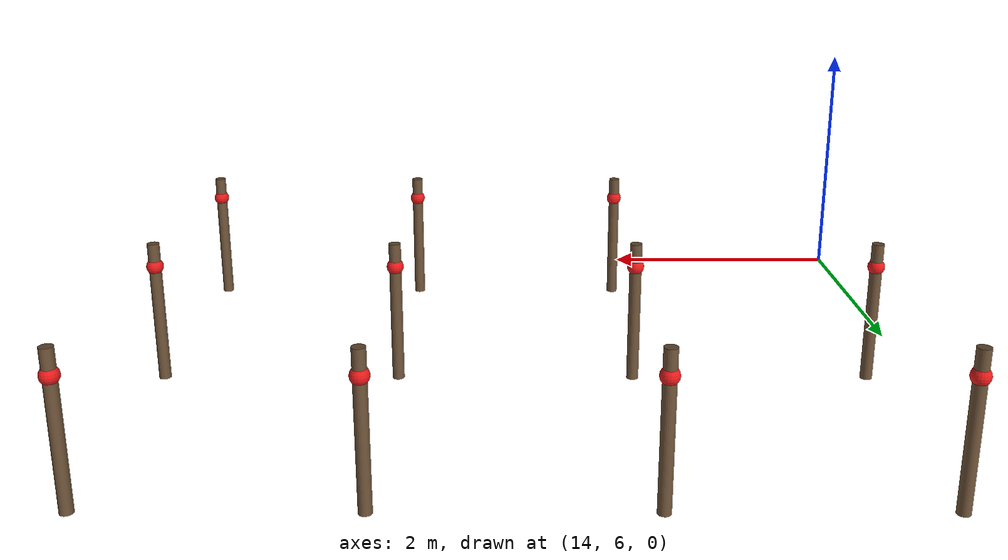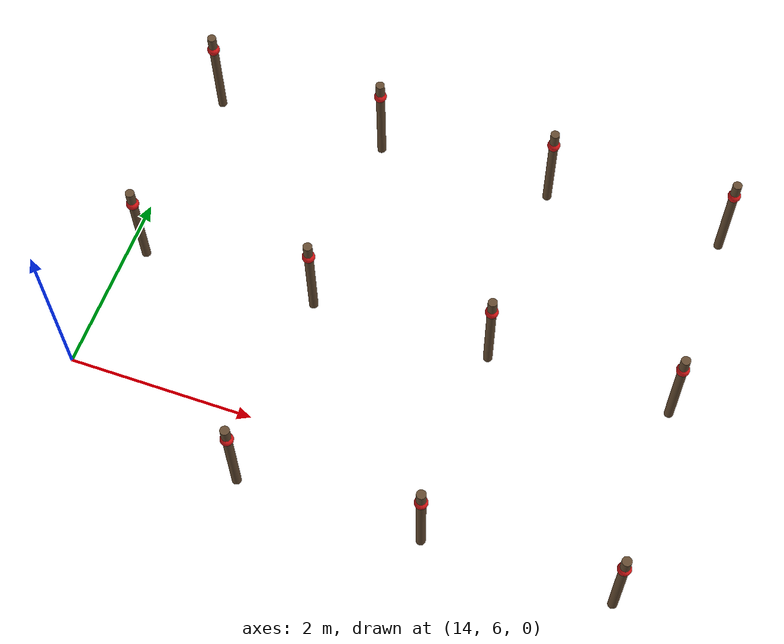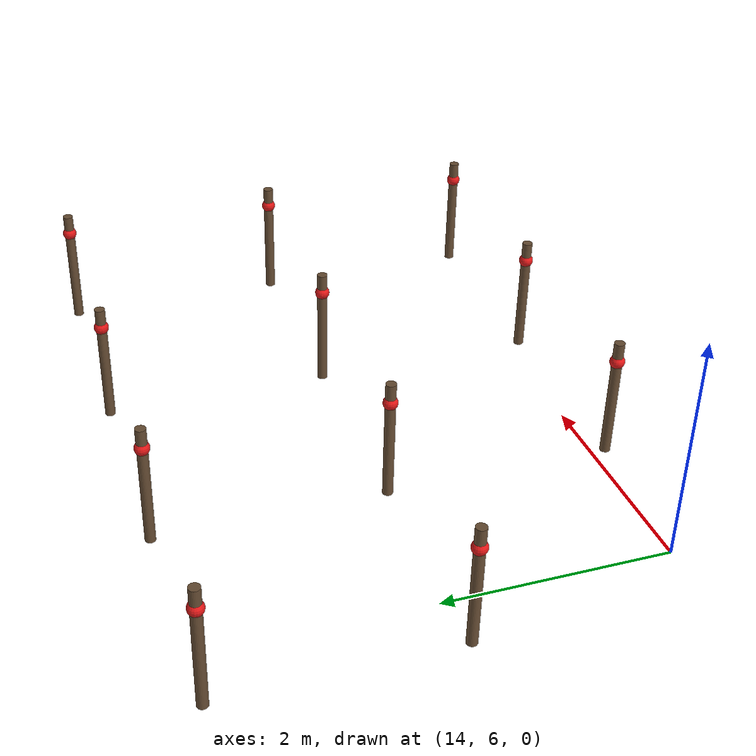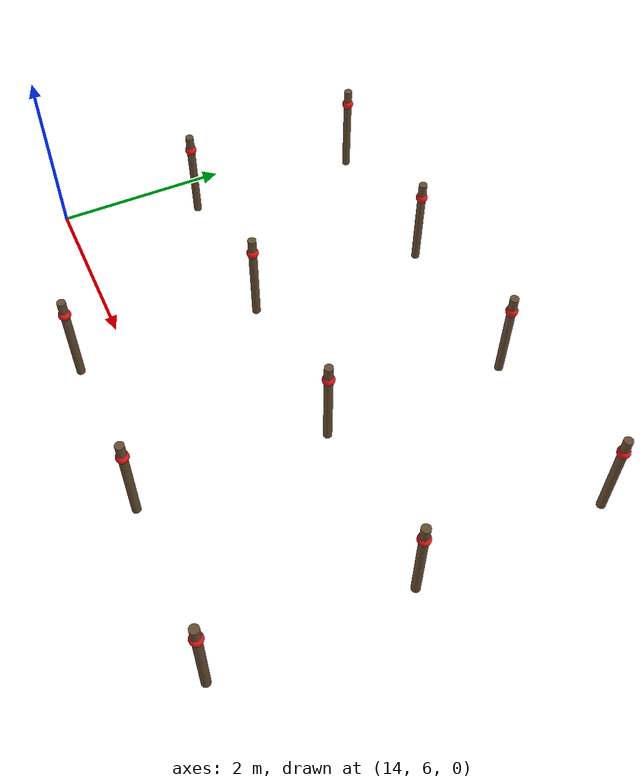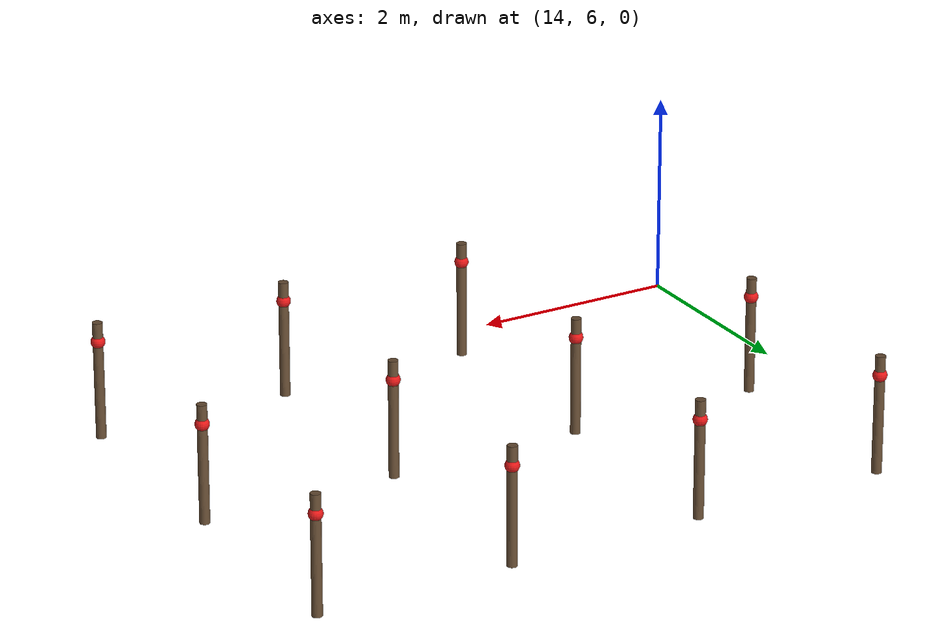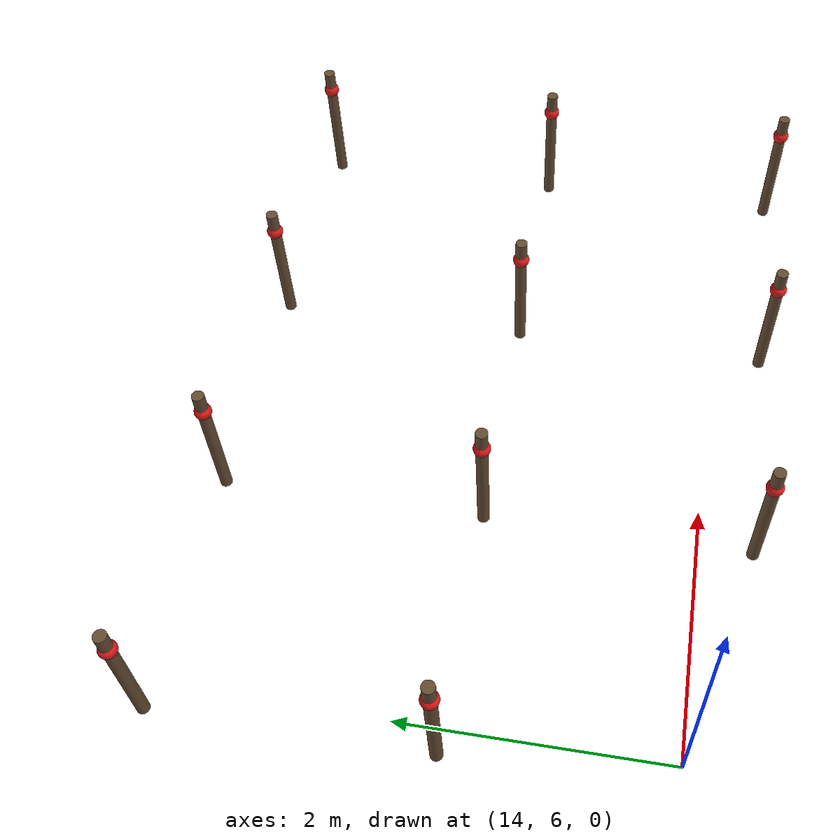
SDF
<sdf version="1.9">
 <world name="empty">
  <model name="row4_post_8">
   <static>true</static>
   <pose>16 5.5 -0.5 0 0 0</pose>
   <link name="vine_link">
    <collision name="post_collision">
     <geometry><cylinder><radius>0.05</radius><length>1.2</length></cylinder></geometry>
     <pose>0 0 0.6 0 0 0</pose>
    </collision>
    <visual name="post_visual">
     <geometry><cylinder><radius>0.05</radius><length>1.2</length></cylinder></geometry>
     <pose>0 0 0.6 0 0 0</pose>
     <material><diffuse>0.4 0.3 0.2 1</diffuse><ambient>0.4 0.3 0.2 1</ambient></material>
    </visual>
    <collision name="ball_collision">
     <geometry><sphere><radius>0.07</radius></sphere></geometry>
     <pose>0 0 1.0 0 0 0</pose>
    </collision>
    <visual name="ball_visual">
     <geometry><sphere><radius>0.07</radius></sphere></geometry>
     <pose>0 0 1.0 0 0 0</pose>
     <material><diffuse>0.9 0.1 0.1 1</diffuse><ambient>0.9 0.1 0.1 1</ambient></material>
    </visual>
   </link>
  </model>
  <model name="row4_post_9">
   <static>true</static>
   <pose>18 5.5 -0.5 0 0 0</pose>
   <link name="vine_link">
    <collision name="post_collision">
     <geometry><cylinder><radius>0.05</radius><length>1.2</length></cylinder></geometry>
     <pose>0 0 0.6 0 0 0</pose>
    </collision>
    <visual name="post_visual">
     <geometry><cylinder><radius>0.05</radius><length>1.2</length></cylinder></geometry>
     <pose>0 0 0.6 0 0 0</pose>
     <material><diffuse>0.4 0.3 0.2 1</diffuse><ambient>0.4 0.3 0.2 1</ambient></material>
    </visual>
    <collision name="ball_collision">
     <geometry><sphere><radius>0.07</radius></sphere></geometry>
     <pose>0 0 1.0 0 0 0</pose>
    </collision>
    <visual name="ball_visual">
     <geometry><sphere><radius>0.07</radius></sphere></geometry>
     <pose>0 0 1.0 0 0 0</pose>
     <material><diffuse>0.9 0.1 0.1 1</diffuse><ambient>0.9 0.1 0.1 1</ambient></material>
    </visual>
   </link>
  </model>
  <model name="row4_post_10">
   <static>true</static>
   <pose>20 5.5 -0.5 0 0 0</pose>
   <link name="vine_link">
    <collision name="post_collision">
     <geometry><cylinder><radius>0.05</radius><length>1.2</length></cylinder></geometry>
     <pose>0 0 0.6 0 0 0</pose>
    </collision>
    <visual name="post_visual">
     <geometry><cylinder><radius>0.05</radius><length>1.2</length></cylinder></geometry>
     <pose>0 0 0.6 0 0 0</pose>
     <material><diffuse>0.4 0.3 0.2 1</diffuse><ambient>0.4 0.3 0.2 1</ambient></material>
    </visual>
    <collision name="ball_collision">
     <geometry><sphere><radius>0.07</radius></sphere></geometry>
     <pose>0 0 1.0 0 0 0</pose>
    </collision>
    <visual name="ball_visual">
     <geometry><sphere><radius>0.07</radius></sphere></geometry>
     <pose>0 0 1.0 0 0 0</pose>
     <material><diffuse>0.9 0.1 0.1 1</diffuse><ambient>0.9 0.1 0.1 1</ambient></material>
    </visual>
   </link>
  </model>
  <model name="row5_post_7">
   <static>true</static>
   <pose>14 7.7 -0.5 0 0 0</pose>
   <link name="vine_link">
    <collision name="post_collision">
     <geometry><cylinder><radius>0.05</radius><length>1.2</length></cylinder></geometry>
     <pose>0 0 0.6 0 0 0</pose>
    </collision>
    <visual name="post_visual">
     <geometry><cylinder><radius>0.05</radius><length>1.2</length></cylinder></geometry>
     <pose>0 0 0.6 0 0 0</pose>
     <material><diffuse>0.4 0.3 0.2 1</diffuse><ambient>0.4 0.3 0.2 1</ambient></material>
    </visual>
    <collision name="ball_collision">
     <geometry><sphere><radius>0.07</radius></sphere></geometry>
     <pose>0 0 1.0 0 0 0</pose>
    </collision>
    <visual name="ball_visual">
     <geometry><sphere><radius>0.07</radius></sphere></geometry>
     <pose>0 0 1.0 0 0 0</pose>
     <material><diffuse>0.9 0.1 0.1 1</diffuse><ambient>0.9 0.1 0.1 1</ambient></material>
    </visual>
   </link>
  </model>
  <model name="row5_post_8">
   <static>true</static>
   <pose>16 7.7 -0.5 0 0 0</pose>
   <link name="vine_link">
    <collision name="post_collision">
     <geometry><cylinder><radius>0.05</radius><length>1.2</length></cylinder></geometry>
     <pose>0 0 0.6 0 0 0</pose>
    </collision>
    <visual name="post_visual">
     <geometry><cylinder><radius>0.05</radius><length>1.2</length></cylinder></geometry>
     <pose>0 0 0.6 0 0 0</pose>
     <material><diffuse>0.4 0.3 0.2 1</diffuse><ambient>0.4 0.3 0.2 1</ambient></material>
    </visual>
    <collision name="ball_collision">
     <geometry><sphere><radius>0.07</radius></sphere></geometry>
     <pose>0 0 1.0 0 0 0</pose>
    </collision>
    <visual name="ball_visual">
     <geometry><sphere><radius>0.07</radius></sphere></geometry>
     <pose>0 0 1.0 0 0 0</pose>
     <material><diffuse>0.9 0.1 0.1 1</diffuse><ambient>0.9 0.1 0.1 1</ambient></material>
    </visual>
   </link>
  </model>
  <model name="row5_post_9">
   <static>true</static>
   <pose>18 7.7 -0.5 0 0 0</pose>
   <link name="vine_link">
    <collision name="post_collision">
     <geometry><cylinder><radius>0.05</radius><length>1.2</length></cylinder></geometry>
     <pose>0 0 0.6 0 0 0</pose>
    </collision>
    <visual name="post_visual">
     <geometry><cylinder><radius>0.05</radius><length>1.2</length></cylinder></geometry>
     <pose>0 0 0.6 0 0 0</pose>
     <material><diffuse>0.4 0.3 0.2 1</diffuse><ambient>0.4 0.3 0.2 1</ambient></material>
    </visual>
    <collision name="ball_collision">
     <geometry><sphere><radius>0.07</radius></sphere></geometry>
     <pose>0 0 1.0 0 0 0</pose>
    </collision>
    <visual name="ball_visual">
     <geometry><sphere><radius>0.07</radius></sphere></geometry>
     <pose>0 0 1.0 0 0 0</pose>
     <material><diffuse>0.9 0.1 0.1 1</diffuse><ambient>0.9 0.1 0.1 1</ambient></material>
    </visual>
   </link>
  </model>
  <model name="row5_post_10">
   <static>true</static>
   <pose>20 7.7 -0.5 0 0 0</pose>
   <link name="vine_link">
    <collision name="post_collision">
     <geometry><cylinder><radius>0.05</radius><length>1.2</length></cylinder></geometry>
     <pose>0 0 0.6 0 0 0</pose>
    </collision>
    <visual name="post_visual">
     <geometry><cylinder><radius>0.05</radius><length>1.2</length></cylinder></geometry>
     <pose>0 0 0.6 0 0 0</pose>
     <material><diffuse>0.4 0.3 0.2 1</diffuse><ambient>0.4 0.3 0.2 1</ambient></material>
    </visual>
    <collision name="ball_collision">
     <geometry><sphere><radius>0.07</radius></sphere></geometry>
     <pose>0 0 1.0 0 0 0</pose>
    </collision>
    <visual name="ball_visual">
     <geometry><sphere><radius>0.07</radius></sphere></geometry>
     <pose>0 0 1.0 0 0 0</pose>
     <material><diffuse>0.9 0.1 0.1 1</diffuse><ambient>0.9 0.1 0.1 1</ambient></material>
    </visual>
   </link>
  </model>
  <model name="row6_post_7">
   <static>true</static>
   <pose>14 9.9 -0.5 0 0 0</pose>
   <link name="vine_link">
    <collision name="post_collision">
     <geometry><cylinder><radius>0.05</radius><length>1.2</length></cylinder></geometry>
     <pose>0 0 0.6 0 0 0</pose>
    </collision>
    <visual name="post_visual">
     <geometry><cylinder><radius>0.05</radius><length>1.2</length></cylinder></geometry>
     <pose>0 0 0.6 0 0 0</pose>
     <material><diffuse>0.4 0.3 0.2 1</diffuse><ambient>0.4 0.3 0.2 1</ambient></material>
    </visual>
    <collision name="ball_collision">
     <geometry><sphere><radius>0.07</radius></sphere></geometry>
     <pose>0 0 1.0 0 0 0</pose>
    </collision>
    <visual name="ball_visual">
     <geometry><sphere><radius>0.07</radius></sphere></geometry>
     <pose>0 0 1.0 0 0 0</pose>
     <material><diffuse>0.9 0.1 0.1 1</diffuse><ambient>0.9 0.1 0.1 1</ambient></material>
    </visual>
   </link>
  </model>
  <model name="row6_post_8">
   <static>true</static>
   <pose>16 9.9 -0.5 0 0 0</pose>
   <link name="vine_link">
    <collision name="post_collision">
     <geometry><cylinder><radius>0.05</radius><length>1.2</length></cylinder></geometry>
     <pose>0 0 0.6 0 0 0</pose>
    </collision>
    <visual name="post_visual">
     <geometry><cylinder><radius>0.05</radius><length>1.2</length></cylinder></geometry>
     <pose>0 0 0.6 0 0 0</pose>
     <material><diffuse>0.4 0.3 0.2 1</diffuse><ambient>0.4 0.3 0.2 1</ambient></material>
    </visual>
    <collision name="ball_collision">
     <geometry><sphere><radius>0.07</radius></sphere></geometry>
     <pose>0 0 1.0 0 0 0</pose>
    </collision>
    <visual name="ball_visual">
     <geometry><sphere><radius>0.07</radius></sphere></geometry>
     <pose>0 0 1.0 0 0 0</pose>
     <material><diffuse>0.9 0.1 0.1 1</diffuse><ambient>0.9 0.1 0.1 1</ambient></material>
    </visual>
   </link>
  </model>
  <model name="row6_post_9">
   <static>true</static>
   <pose>18 9.9 -0.5 0 0 0</pose>
   <link name="vine_link">
    <collision name="post_collision">
     <geometry><cylinder><radius>0.05</radius><length>1.2</length></cylinder></geometry>
     <pose>0 0 0.6 0 0 0</pose>
    </collision>
    <visual name="post_visual">
     <geometry><cylinder><radius>0.05</radius><length>1.2</length></cylinder></geometry>
     <pose>0 0 0.6 0 0 0</pose>
     <material><diffuse>0.4 0.3 0.2 1</diffuse><ambient>0.4 0.3 0.2 1</ambient></material>
    </visual>
    <collision name="ball_collision">
     <geometry><sphere><radius>0.07</radius></sphere></geometry>
     <pose>0 0 1.0 0 0 0</pose>
    </collision>
    <visual name="ball_visual">
     <geometry><sphere><radius>0.07</radius></sphere></geometry>
     <pose>0 0 1.0 0 0 0</pose>
     <material><diffuse>0.9 0.1 0.1 1</diffuse><ambient>0.9 0.1 0.1 1</ambient></material>
    </visual>
   </link>
  </model>
  <model name="row6_post_10">
   <static>true</static>
   <pose>20 9.9 -0.5 0 0 0</pose>
   <link name="vine_link">
    <collision name="post_collision">
     <geometry><cylinder><radius>0.05</radius><length>1.2</length></cylinder></geometry>
     <pose>0 0 0.6 0 0 0</pose>
    </collision>
    <visual name="post_visual">
     <geometry><cylinder><radius>0.05</radius><length>1.2</length></cylinder></geometry>
     <pose>0 0 0.6 0 0 0</pose>
     <material><diffuse>0.4 0.3 0.2 1</diffuse><ambient>0.4 0.3 0.2 1</ambient></material>
    </visual>
    <collision name="ball_collision">
     <geometry><sphere><radius>0.07</radius></sphere></geometry>
     <pose>0 0 1.0 0 0 0</pose>
    </collision>
    <visual name="ball_visual">
     <geometry><sphere><radius>0.07</radius></sphere></geometry>
     <pose>0 0 1.0 0 0 0</pose>
     <material><diffuse>0.9 0.1 0.1 1</diffuse><ambient>0.9 0.1 0.1 1</ambient></material>
    </visual>
   </link>
  </model>
 </world>
</sdf>
